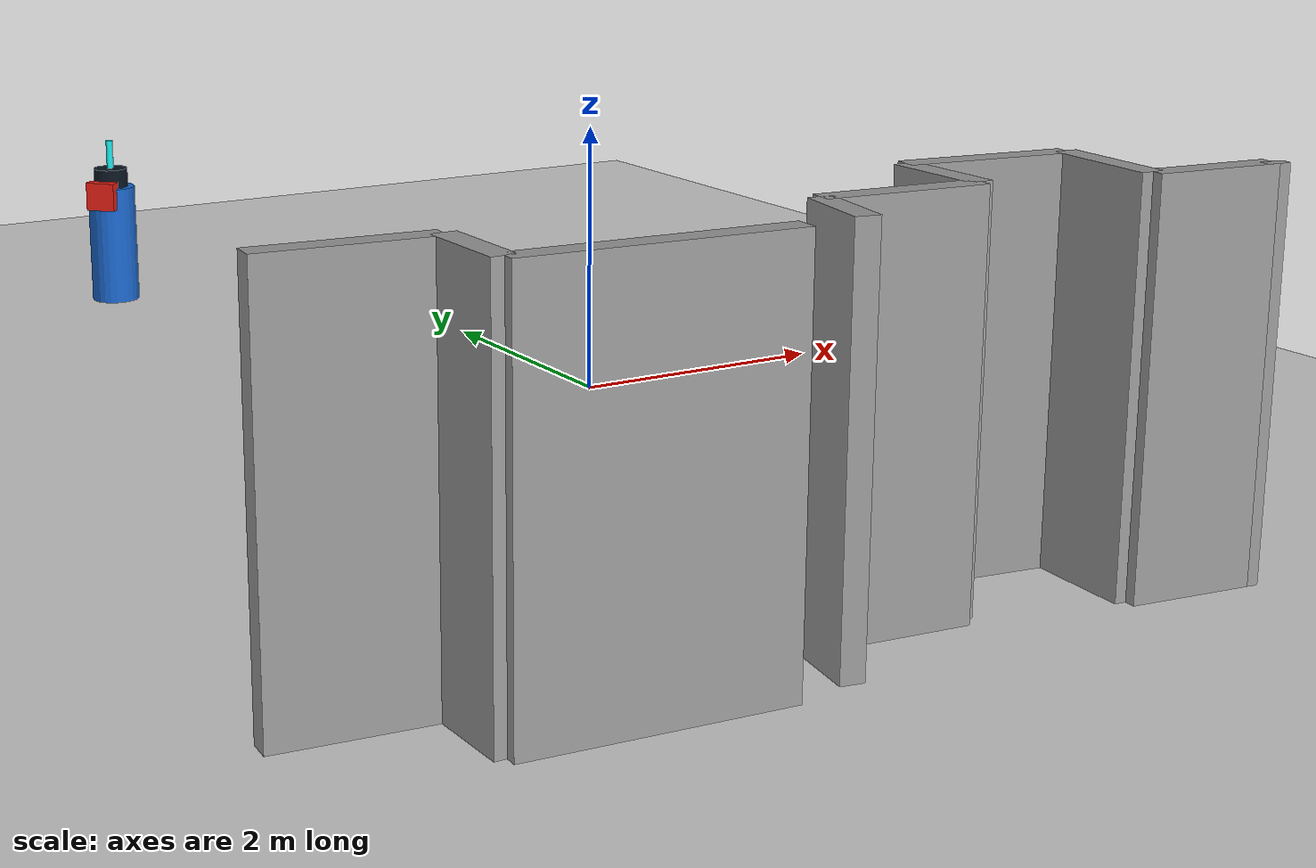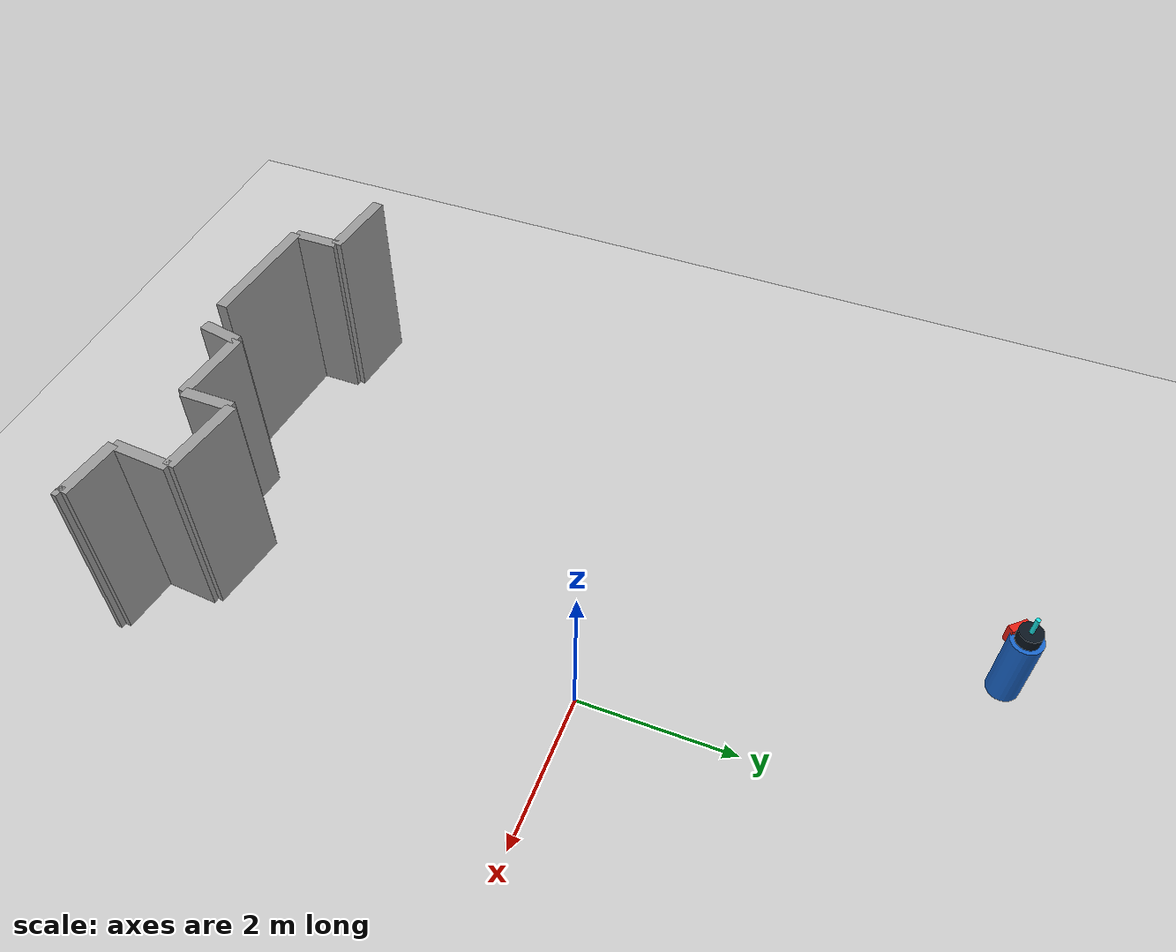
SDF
<sdf version="1.7">
 <world name="default">
  <plugin name="socnav_plugin" filename="libSocNavPlugin.so">
   <robot_name>robot</robot_name>
   <trajectory_file>/home/hunav_gz_classic_ws/SocNav3_trajectories/src3/000001057.json</trajectory_file>
   <human_slots>3</human_slots>
  </plugin>
  <light name="sun" type="directional">
   <pose>0 0 10 0 -0 0</pose>
   <diffuse>0.8 0.8 0.8 1</diffuse>
   <specular>0.2 0.2 0.2 1</specular>
   <attenuation>
    <range>1000</range>
    <constant>0.9</constant>
    <linear>0.01</linear>
    <quadratic>0.001</quadratic>
   </attenuation>
   <direction>-0.5 0.1 -0.9</direction>
   <spot><inner_angle>0</inner_angle><outer_angle>0</outer_angle><falloff>0</falloff></spot>
  </light>
  <model name="ground_plane">
   <static>1</static>
   <link name="link">
    <collision name="collision">
     <geometry><plane><normal>0 0 1</normal><size>100 100</size></plane></geometry>
     <surface><friction><ode><mu>100</mu><mu2>50</mu2></ode></friction></surface>
    </collision>
    <visual name="visual">
     <cast_shadows>0</cast_shadows>
     <geometry><plane><normal>0 0 1</normal><size>100 100</size></plane></geometry>
     <material>
      <script><uri>file://media/materials/scripts/kitchen.material</uri><name>Kitchen/CounterTop_H</name></script>
     </material>
    </visual>
   </link>
  </model>
  <gravity>0 0 -9.8</gravity>
  <magnetic_field>6e-06 2.3e-05 -4.2e-05</magnetic_field>
  <atmosphere type="adiabatic"/>
  <physics type="ode">
   <max_step_size>0.001</max_step_size>
   <real_time_factor>1</real_time_factor>
   <real_time_update_rate>1000</real_time_update_rate>
  </physics>
  <scene><ambient>0.4 0.4 0.4 1</ambient><background>0.7 0.7 0.7 1</background><shadows>1</shadows></scene>
  <audio><device>default</device></audio>
  <spherical_coordinates>
   <surface_model>EARTH_WGS84</surface_model>
   <latitude_deg>0</latitude_deg>
   <longitude_deg>0</longitude_deg>
   <elevation>0</elevation>
   <heading_deg>0</heading_deg>
  </spherical_coordinates>
  <model name="robot">
   <pose>-2.0477990352534214 4.647442635240498 0.5 0 0 -2.3966263763960334</pose>
   <link name="link">
    <collision name="collision">
     <geometry><cylinder><radius>0.2</radius><length>1.0</length></cylinder></geometry>
    </collision>
    <visual name="visual">
     <geometry><cylinder><radius>0.2</radius><length>1.0</length></cylinder></geometry>
     <material><ambient>0.1 0.4 0.8 1</ambient><diffuse>0.1 0.4 0.8 1</diffuse></material>
    </visual>
    <visual name="robot_top">
     <pose>0 0 0.58 0 0 0</pose>
     <geometry><cylinder><radius>0.144</radius><length>0.16</length></cylinder></geometry>
     <material><ambient>0.04 0.08 0.12 1</ambient><diffuse>0.04 0.08 0.12 1</diffuse></material>
    </visual>
    <visual name="robot_front">
     <pose>0.168 0 0.44 0 0 0</pose>
     <geometry><box><size>0.096 0.256 0.24</size></box></geometry>
     <material><ambient>0.9 0.12 0.08 1</ambient><diffuse>0.9 0.12 0.08 1</diffuse></material>
    </visual>
    <visual name="robot_sensor">
     <pose>0 0 0.78 0 0 0</pose>
     <geometry><cylinder><radius>0.028000000000000004</radius><length>0.24</length></cylinder></geometry>
     <material><ambient>0.1 0.9 0.9 1</ambient><diffuse>0.1 0.9 0.9 1</diffuse></material>
    </visual>
   </link>
  </model>
  <model name="simple_world_test">
   <link name="Wall_0">
    <collision name="Wall_0_Collision">
     <geometry><box><size>1.0049875621120894 0.15 2.5</size></box></geometry>
     <pose>0 0 1.25 0 -0 0</pose>
    </collision>
    <visual name="Wall_0_Visual">
     <pose>0 0 1.25 0 -0 0</pose>
     <geometry><box><size>1.0049875621120894 0.15 2.5</size></box></geometry>
     <material>
      <script><uri>file://media/materials/scripts/gazebo.material</uri><name>Gazebo/Grey</name></script>
      <ambient>1 1 1 1</ambient>
     </material>
     <meta><layer>0</layer></meta>
    </visual>
    <pose>-4.347744935070706 -4.857812234735151 0 0 -0 -0.09966865249116164</pose>
   </link>
   <link name="Wall_1">
    <collision name="Wall_1_Collision">
     <geometry><box><size>0.6000000000000005 0.15 2.5</size></box></geometry>
     <pose>0 0 1.25 0 -0 0</pose>
    </collision>
    <visual name="Wall_1_Visual">
     <pose>0 0 1.25 0 -0 0</pose>
     <geometry><box><size>0.6000000000000005 0.15 2.5</size></box></geometry>
     <material>
      <script><uri>file://media/materials/scripts/gazebo.material</uri><name>Gazebo/Grey</name></script>
      <ambient>1 1 1 1</ambient>
     </material>
     <meta><layer>0</layer></meta>
    </visual>
    <pose>-3.8477449350707054 -5.207812234735151 0 0 -0 -1.5707963267948966</pose>
   </link>
   <link name="Wall_2">
    <collision name="Wall_2_Collision">
     <geometry><box><size>1.6339105884765142 0.15 2.5</size></box></geometry>
     <pose>0 0 1.25 0 -0 0</pose>
    </collision>
    <visual name="Wall_2_Visual">
     <pose>0 0 1.25 0 -0 0</pose>
     <geometry><box><size>1.6339105884765142 0.15 2.5</size></box></geometry>
     <material>
      <script><uri>file://media/materials/scripts/gazebo.material</uri><name>Gazebo/Grey</name></script>
      <ambient>1 1 1 1</ambient>
     </material>
     <meta><layer>0</layer></meta>
    </visual>
    <pose>-3.0330776794465946 -5.56891227890696 0 0 -0 -0.07485984771076666</pose>
   </link>
   <link name="Wall_3">
    <collision name="Wall_3_Collision">
     <geometry><box><size>0.530761316087601 0.15 2.5</size></box></geometry>
     <pose>0 0 1.25 0 -0 0</pose>
    </collision>
    <visual name="Wall_3_Visual">
     <pose>0 0 1.25 0 -0 0</pose>
     <geometry><box><size>0.530761316087601 0.15 2.5</size></box></geometry>
     <material>
      <script><uri>file://media/materials/scripts/gazebo.material</uri><name>Gazebo/Grey</name></script>
      <ambient>1 1 1 1</ambient>
     </material>
     <meta><layer>0</layer></meta>
    </visual>
    <pose>-1.7952176703746707 -5.36891227890696 0 0 -0 1.390942827002419</pose>
   </link>
   <link name="Wall_4">
    <collision name="Wall_4_Collision">
     <geometry><box><size>1.004987562112089 0.15 2.5</size></box></geometry>
     <pose>0 0 1.25 0 -0 0</pose>
    </collision>
    <visual name="Wall_4_Visual">
     <pose>0 0 1.25 0 -0 0</pose>
     <geometry><box><size>1.004987562112089 0.15 2.5</size></box></geometry>
     <material>
      <script><uri>file://media/materials/scripts/gazebo.material</uri><name>Gazebo/Grey</name></script>
      <ambient>1 1 1 1</ambient>
     </material>
     <meta><layer>0</layer></meta>
    </visual>
    <pose>-1.2477449350707057 -5.157812234735151 0 0 -0 -0.09966865249116168</pose>
   </link>
   <link name="Wall_5">
    <collision name="Wall_5_Collision">
     <geometry><box><size>0.6499999999999995 0.15 2.5</size></box></geometry>
     <pose>0 0 1.25 0 -0 0</pose>
    </collision>
    <visual name="Wall_5_Visual">
     <pose>0 0 1.25 0 -0 0</pose>
     <geometry><box><size>0.6499999999999995 0.15 2.5</size></box></geometry>
     <material>
      <script><uri>file://media/materials/scripts/gazebo.material</uri><name>Gazebo/Grey</name></script>
      <ambient>1 1 1 1</ambient>
     </material>
     <meta><layer>0</layer></meta>
    </visual>
    <pose>-0.7477449350707057 -4.882812234735152 0 0 -0 1.5707963267948966</pose>
   </link>
   <link name="Wall_6">
    <collision name="Wall_6_Collision">
     <geometry><box><size>1.0606601717798214 0.15 2.5</size></box></geometry>
     <pose>0 0 1.25 0 -0 0</pose>
    </collision>
    <visual name="Wall_6_Visual">
     <pose>0 0 1.25 0 -0 0</pose>
     <geometry><box><size>1.0606601717798214 0.15 2.5</size></box></geometry>
     <material>
      <script><uri>file://media/materials/scripts/gazebo.material</uri><name>Gazebo/Grey</name></script>
      <ambient>1 1 1 1</ambient>
     </material>
     <meta><layer>0</layer></meta>
    </visual>
    <pose>-0.22274493507070559 -4.632812234735152 0 0 -0 -0.14189705460416338</pose>
   </link>
   <link name="Wall_7">
    <collision name="Wall_7_Collision">
     <geometry><box><size>0.7516648189186454 0.15 2.5</size></box></geometry>
     <pose>0 0 1.25 0 -0 0</pose>
    </collision>
    <visual name="Wall_7_Visual">
     <pose>0 0 1.25 0 -0 0</pose>
     <geometry><box><size>0.7516648189186454 0.15 2.5</size></box></geometry>
     <material>
      <script><uri>file://media/materials/scripts/gazebo.material</uri><name>Gazebo/Grey</name></script>
      <ambient>1 1 1 1</ambient>
     </material>
     <meta><layer>0</layer></meta>
    </visual>
    <pose>0.2772550649292945 -5.082812234735151 0 0 -0 -1.6373644905707205</pose>
   </link>
   <link name="Wall_8">
    <collision name="Wall_8_Collision">
     <geometry><box><size>0.8062257748298551 0.15 2.5</size></box></geometry>
     <pose>0 0 1.25 0 -0 0</pose>
    </collision>
    <visual name="Wall_8_Visual">
     <pose>0 0 1.25 0 -0 0</pose>
     <geometry><box><size>0.8062257748298551 0.15 2.5</size></box></geometry>
     <material>
      <script><uri>file://media/materials/scripts/gazebo.material</uri><name>Gazebo/Grey</name></script>
      <ambient>1 1 1 1</ambient>
     </material>
     <meta><layer>0</layer></meta>
    </visual>
    <pose>0.6522550649292945 -5.507812234735152 0 0 -0 -0.12435499454676209</pose>
   </link>
   <link name="Wall_9">
    <collision name="Wall_9_Collision">
     <geometry><box><size>0.07319599867679524 0.15 2.5</size></box></geometry>
     <pose>0 0 1.25 0 -0 0</pose>
    </collision>
    <visual name="Wall_9_Visual">
     <pose>0 0 1.25 0 -0 0</pose>
     <geometry><box><size>0.07319599867679524 0.15 2.5</size></box></geometry>
     <material>
      <script><uri>file://media/materials/scripts/gazebo.material</uri><name>Gazebo/Grey</name></script>
      <ambient>1 1 1 1</ambient>
     </material>
     <meta><layer>0</layer></meta>
    </visual>
    <pose>1.0462383909006598 -5.593912278906959 0 0 -0 -1.7359450042095235</pose>
   </link>
   <static>1</static>
  </model>
 </world>
</sdf>
